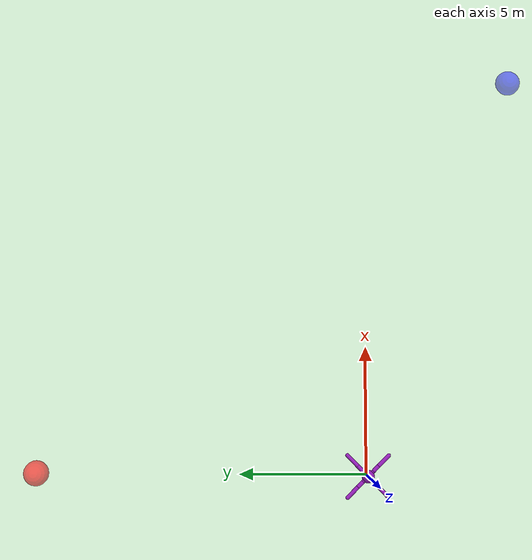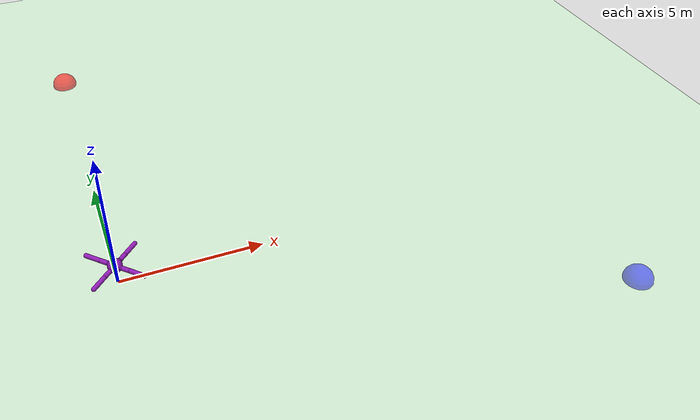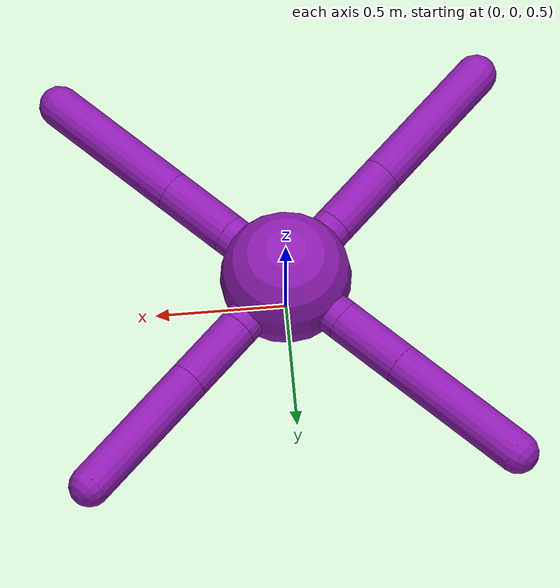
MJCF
<mujoco model="ant">
  <compiler angle="degree" coordinate="local" inertiafromgeom="true" />
  <option integrator="RK4" timestep="0.02" />
  <custom>
    <numeric data="0.0 0.0 0.55 1.0 0.0 0.0 0.0 0.0 1.0 0.0 -1.0 0.0 -1.0 0.0 1.0" name="init_qpos" />
  </custom>
  <default>
    <joint armature="1" damping="1" limited="true" />
    <geom conaffinity="0" condim="3" density="5.0" friction="1 0.5 0.5" margin="0.01" rgba="0.8 0.6 0.4 1" solimp=".8 .8 .01" solref=".02 1" />
  </default>
  <asset>
    <texture builtin="gradient" height="100" rgb1="1 1 1" rgb2="0 0 0" type="skybox" width="100" />
    <texture builtin="flat" height="1278" mark="cross" markrgb="1 1 1" name="texgeom" random="0.01" rgb1="0.8 0.6 0.4" rgb2="0.8 0.6 0.4" type="cube" width="127" />
    <texture builtin="checker" height="100" name="texplane" rgb1="1 1 1" rgb2="1 1 1" type="2d" width="100" />
    <material name="MatPlane" reflectance="0.0" shininess="1" specular="1" texrepeat="60 60" texture="texplane" />
    <material name="geom" texture="texgeom" texuniform="true" />
  </asset>
  <worldbody>
    <light cutoff="100" diffuse="1 1 1" dir="-0 0 -1.3" directional="true" exponent="1" pos="0 0 1.3" specular=".1 .1 .1" />
    <geom conaffinity="1" condim="3" material="MatPlane" name="floor" pos="0 0 0" rgba="0.8 0.9 0.8 1" size="40 40 40" type="plane" />
    <body name="torso" pos="0 0 0.75">
      <geom name="torso_geom" pos="0 0 0" rgba="0.56 0.11 0.7 1" size="0.25" type="sphere" />
      <joint armature="0" axis="0 0 1" damping="0" limited="false" margin="0.01" name="root" pos="0 0 0" type="free" />
      <body name="front_left_leg" pos="0 0 0">
        <geom fromto="0.0 0.0 0.0 0.2 0.2 0.0" name="aux_1_geom" rgba="0.56 0.11 0.7 1" size="0.08" type="capsule" />
        <body name="aux_1" pos="0.2 0.2 0">
          <joint axis="0 0 1" name="hip_1" pos="0.0 0.0 0.0" range="-30 30" type="hinge" />
          <geom fromto="0.0 0.0 0.0 0.2 0.2 0.0" name="left_leg_geom" rgba="0.56 0.11 0.7 1" size="0.08" type="capsule" />
          <body pos="0.2 0.2 0">
            <joint axis="-1 1 0" name="ankle_1" pos="0.0 0.0 0.0" range="30 70" type="hinge" />
            <geom fromto="0.0 0.0 0.0 0.4 0.4 0.0" name="left_ankle_geom" rgba="0.56 0.11 0.7 1" size="0.08" type="capsule" />
          </body>
        </body>
      </body>
      <body name="front_right_leg" pos="0 0 0">
        <geom fromto="0.0 0.0 0.0 -0.2 0.2 0.0" name="aux_2_geom" rgba="0.56 0.11 0.7 1" size="0.08" type="capsule" />
        <body name="aux_2" pos="-0.2 0.2 0">
          <joint axis="0 0 1" name="hip_2" pos="0.0 0.0 0.0" range="-30 30" type="hinge" />
          <geom fromto="0.0 0.0 0.0 -0.2 0.2 0.0" name="right_leg_geom" rgba="0.56 0.11 0.7 1" size="0.08" type="capsule" />
          <body pos="-0.2 0.2 0">
            <joint axis="1 1 0" name="ankle_2" pos="0.0 0.0 0.0" range="-70 -30" type="hinge" />
            <geom fromto="0.0 0.0 0.0 -0.4 0.4 0.0" name="right_ankle_geom" rgba="0.56 0.11 0.7 1" size="0.08" type="capsule" />
          </body>
        </body>
      </body>
      <body name="back_leg" pos="0 0 0">
        <geom fromto="0.0 0.0 0.0 -0.2 -0.2 0.0" name="aux_3_geom" rgba="0.56 0.11 0.7 1" size="0.08" type="capsule" />
        <body name="aux_3" pos="-0.2 -0.2 0">
          <joint axis="0 0 1" name="hip_3" pos="0.0 0.0 0.0" range="-30 30" type="hinge" />
          <geom fromto="0.0 0.0 0.0 -0.2 -0.2 0.0" name="back_leg_geom" rgba="0.56 0.11 0.7 1" size="0.08" type="capsule" />
          <body pos="-0.2 -0.2 0">
            <joint axis="-1 1 0" name="ankle_3" pos="0.0 0.0 0.0" range="-70 -30" type="hinge" />
            <geom fromto="0.0 0.0 0.0 -0.4 -0.4 0.0" name="third_ankle_geom" rgba="0.56 0.11 0.7 1" size="0.08" type="capsule" />
          </body>
        </body>
      </body>
      <body name="right_back_leg" pos="0 0 0">
        <geom fromto="0.0 0.0 0.0 0.2 -0.2 0.0" name="aux_4_geom" rgba="0.56 0.11 0.7 1" size="0.08" type="capsule" />
        <body name="aux_4" pos="0.2 -0.2 0">
          <joint axis="0 0 1" name="hip_4" pos="0.0 0.0 0.0" range="-30 30" type="hinge" />
          <geom fromto="0.0 0.0 0.0 0.2 -0.2 0.0" name="rightback_leg_geom" rgba="0.56 0.11 0.7 1" size="0.08" type="capsule" />
          <body pos="0.2 -0.2 0">
            <joint axis="1 1 0" name="ankle_4" pos="0.0 0.0 0.0" range="30 70" type="hinge" />
            <geom fromto="0.0 0.0 0.0 0.4 -0.4 0.0" name="fourth_ankle_geom" rgba="0.56 0.11 0.7 1" size="0.08" type="capsule" />
          </body>
        </body>
      </body>
    </body>

     <geom name="target" pos="0 13 0" rgba="1. 0. 0. 0.6" size="0.5" type="sphere" />
     <geom name="key" pos="16 -6 0" rgba="0. 0. 1. 0.5" size="0.5" type="sphere" />

  </worldbody>
  <actuator>
    <motor ctrllimited="true" ctrlrange="-30.0 30.0" joint="hip_4" />
    <motor ctrllimited="true" ctrlrange="-30.0 30.0" joint="ankle_4" />
    <motor ctrllimited="true" ctrlrange="-30.0 30.0" joint="hip_1" />
    <motor ctrllimited="true" ctrlrange="-30.0 30.0" joint="ankle_1" />
    <motor ctrllimited="true" ctrlrange="-30.0 30.0" joint="hip_2" />
    <motor ctrllimited="true" ctrlrange="-30.0 30.0" joint="ankle_2" />
    <motor ctrllimited="true" ctrlrange="-30.0 30.0" joint="hip_3" />
    <motor ctrllimited="true" ctrlrange="-30.0 30.0" joint="ankle_3" />
  </actuator>
</mujoco>
